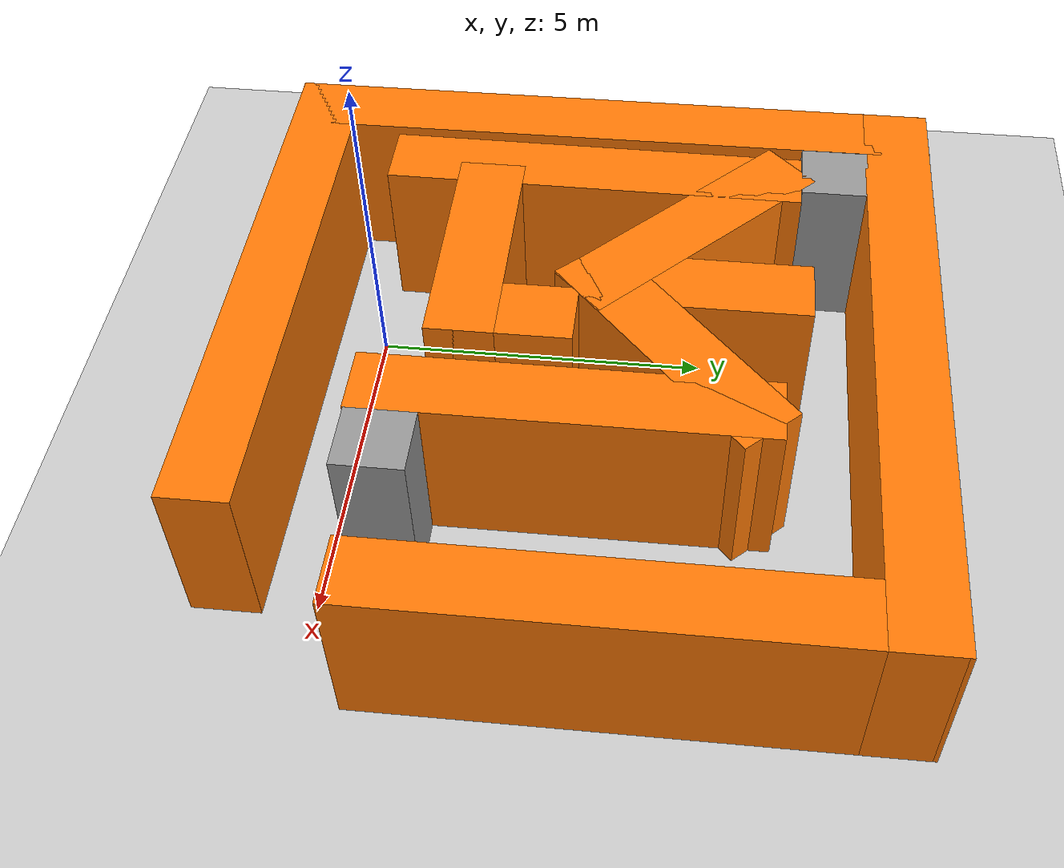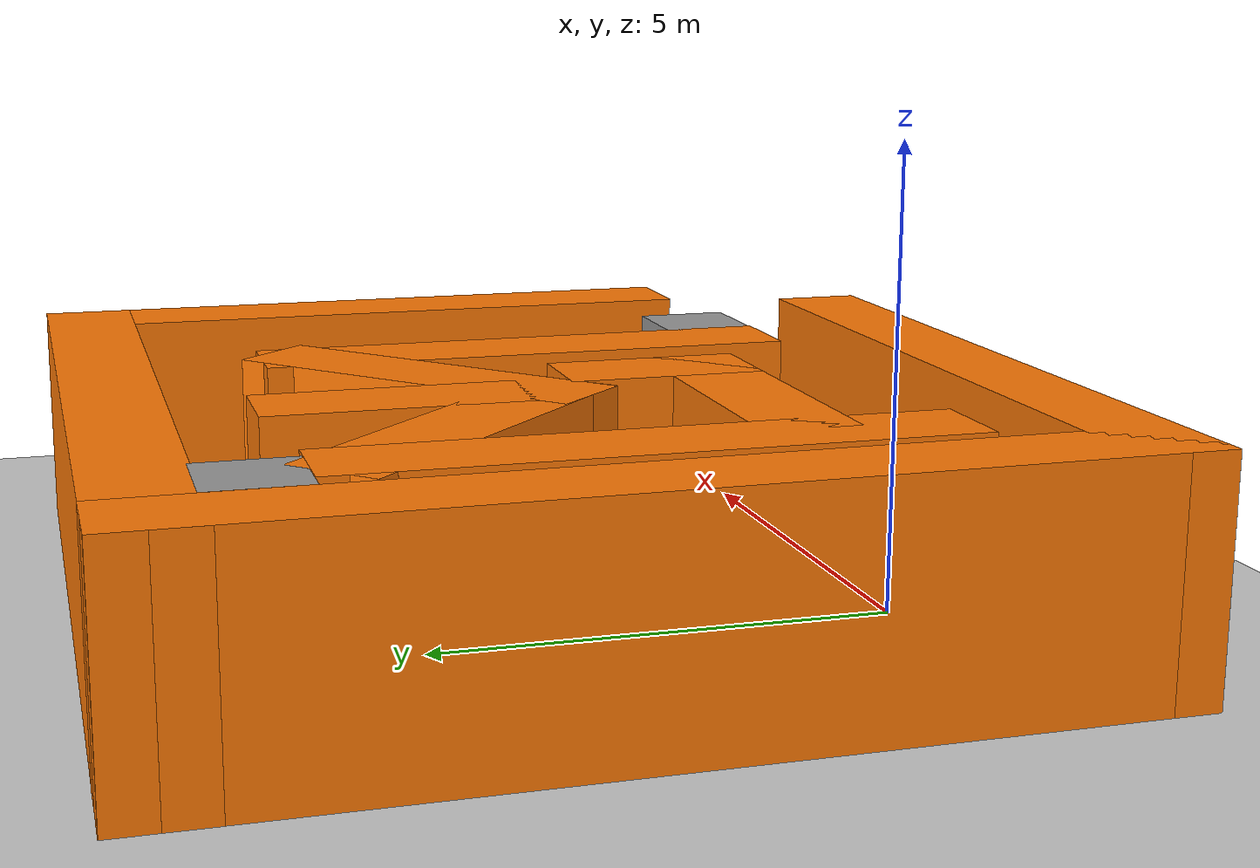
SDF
<sdf version="1.7">
 <world name="default">
  <light name="sun" type="directional">
   <pose>0 0 10 0 -0 0</pose>
   <diffuse>0.8 0.8 0.8 1</diffuse>
   <specular>0.2 0.2 0.2 1</specular>
   <attenuation>
    <range>1000</range>
    <constant>0.9</constant>
    <linear>0.01</linear>
    <quadratic>0.001</quadratic>
   </attenuation>
   <direction>-0.5 0.1 -0.9</direction>
   <spot><inner_angle>0</inner_angle><outer_angle>0</outer_angle><falloff>0</falloff></spot>
  </light>
  <model name="ground_plane">
   <static>1</static>
   <link name="link">
    <collision name="collision">
     <geometry><plane><normal>0 0 1</normal><size>100 100</size></plane></geometry>
     <surface>
      <contact><collide_bitmask>65535</collide_bitmask></contact>
      <friction><ode><mu>100</mu><mu2>50</mu2></ode></friction>
     </surface>
    </collision>
    <visual name="visual">
     <cast_shadows>0</cast_shadows>
     <geometry><plane><normal>0 0 1</normal><size>100 100</size></plane></geometry>
     <material>
      <script><uri>file://media/materials/scripts/gazebo.material</uri><name>Gazebo/Grey</name></script>
     </material>
    </visual>
   </link>
  </model>
  <gravity>0 0 -9.8</gravity>
  <magnetic_field>6e-06 2.3e-05 -4.2e-05</magnetic_field>
  <atmosphere type="adiabatic"/>
  <physics type="ode">
   <max_step_size>0.001</max_step_size>
   <real_time_factor>1</real_time_factor>
   <real_time_update_rate>1000</real_time_update_rate>
  </physics>
  <scene><ambient>0.4 0.4 0.4 1</ambient><background>0.7 0.7 0.7 1</background><shadows>1</shadows></scene>
  <spherical_coordinates>
   <surface_model>EARTH_WGS84</surface_model>
   <latitude_deg>0</latitude_deg>
   <longitude_deg>0</longitude_deg>
   <elevation>0</elevation>
   <heading_deg>0</heading_deg>
  </spherical_coordinates>
  <model name="kayra">
   <pose>1.4947 3.30314 0 0 -0 0</pose>
   <link name="Wall_0">
    <collision name="Wall_0_Collision">
     <geometry><box><size>10.1156 1 2.5</size></box></geometry>
     <pose>0 0 1.25 0 -0 0</pose>
    </collision>
    <visual name="Wall_0_Visual">
     <pose>0 0 1.25 0 -0 0</pose>
     <geometry><box><size>10.1156 1 2.5</size></box></geometry>
     <material>
      <script><uri>file://media/materials/scripts/gazebo.material</uri><name>Gazebo/Grey</name></script>
      <ambient>0.996078 0.47451 0.0196078 1</ambient>
     </material>
     <meta><layer>0</layer></meta>
    </visual>
    <pose>-4.47575 0 0 0 -0 1.57584</pose>
   </link>
   <link name="Wall_1">
    <collision name="Wall_1_Collision">
     <geometry><box><size>10 1 2.5</size></box></geometry>
     <pose>0 0 1.25 0 -0 0</pose>
    </collision>
    <visual name="Wall_1_Visual">
     <pose>0 0 1.25 0 -0 0</pose>
     <geometry><box><size>10 1 2.5</size></box></geometry>
     <material>
      <script><uri>file://media/materials/scripts/gazebo.material</uri><name>Gazebo/Grey</name></script>
      <ambient>0.996078 0.47451 0.0196078 1</ambient>
     </material>
     <meta><layer>0</layer></meta>
    </visual>
    <pose>0.001248 4.558 0 0 -0 0</pose>
   </link>
   <link name="Wall_10">
    <collision name="Wall_10_Collision">
     <geometry><box><size>6.35035 1 2.5</size></box></geometry>
     <pose>0 0 1.25 0 -0 0</pose>
    </collision>
    <visual name="Wall_10_Visual">
     <pose>0 0 1.25 0 -0 0</pose>
     <geometry><box><size>6.35035 1 2.5</size></box></geometry>
     <material>
      <script><uri>file://media/materials/scripts/gazebo.material</uri><name>Gazebo/Grey</name></script>
      <ambient>0.996078 0.47451 0.0196078 1</ambient>
     </material>
     <meta><layer>0</layer></meta>
    </visual>
    <pose>-3.26325 -0.1 0 0 -0 1.56575</pose>
   </link>
   <link name="Wall_11">
    <collision name="Wall_11_Collision">
     <geometry><box><size>4.32982 1 2.5</size></box></geometry>
     <pose>0 0 1.25 0 -0 0</pose>
    </collision>
    <visual name="Wall_11_Visual">
     <pose>0 0 1.25 0 -0 0</pose>
     <geometry><box><size>4.32982 1 2.5</size></box></geometry>
     <material>
      <script><uri>file://media/materials/scripts/gazebo.material</uri><name>Gazebo/Grey</name></script>
      <ambient>0.996078 0.47451 0.0196078 1</ambient>
     </material>
     <meta><layer>0</layer></meta>
    </visual>
    <pose>-2.06575 1.4045 0 0 -0 -0.779664</pose>
   </link>
   <link name="Wall_12">
    <collision name="Wall_12_Collision">
     <geometry><box><size>4.15926 1 2.5</size></box></geometry>
     <pose>0 0 1.25 0 -0 0</pose>
    </collision>
    <visual name="Wall_12_Visual">
     <pose>0 0 1.25 0 -0 0</pose>
     <geometry><box><size>4.15926 1 2.5</size></box></geometry>
     <material>
      <script><uri>file://media/materials/scripts/gazebo.material</uri><name>Gazebo/Grey</name></script>
      <ambient>0.996078 0.47451 0.0196078 1</ambient>
     </material>
     <meta><layer>0</layer></meta>
    </visual>
    <pose>0.280748 1.3035 0 0 -0 0.743756</pose>
   </link>
   <link name="Wall_13">
    <collision name="Wall_13_Collision">
     <geometry><box><size>5.877 1 2.5</size></box></geometry>
     <pose>0 0 1.25 0 -0 0</pose>
    </collision>
    <visual name="Wall_13_Visual">
     <pose>0 0 1.25 0 -0 0</pose>
     <geometry><box><size>5.877 1 2.5</size></box></geometry>
     <material>
      <script><uri>file://media/materials/scripts/gazebo.material</uri><name>Gazebo/Grey</name></script>
      <ambient>0.996078 0.47451 0.0196078 1</ambient>
     </material>
     <meta><layer>0</layer></meta>
    </visual>
    <pose>1.44325 -0.0655 0 0 -0 -1.5708</pose>
   </link>
   <link name="Wall_15">
    <collision name="Wall_15_Collision">
     <geometry><box><size>3.1 1 2.5</size></box></geometry>
     <pose>0 0 1.25 0 -0 0</pose>
    </collision>
    <visual name="Wall_15_Visual">
     <pose>0 0 1.25 0 -0 0</pose>
     <geometry><box><size>3.1 1 2.5</size></box></geometry>
     <material>
      <script><uri>file://media/materials/scripts/gazebo.material</uri><name>Gazebo/Grey</name></script>
      <ambient>0.996078 0.47451 0.0196078 1</ambient>
     </material>
     <meta><layer>0</layer></meta>
    </visual>
    <pose>-0.856152 1.7064 0 0 -0 1.5708</pose>
   </link>
   <link name="Wall_17">
    <collision name="Wall_17_Collision">
     <geometry><box><size>3.6 1 2.5</size></box></geometry>
     <pose>0 0 1.25 0 -0 0</pose>
    </collision>
    <visual name="Wall_17_Visual">
     <pose>0 0 1.25 0 -0 0</pose>
     <geometry><box><size>3.6 1 2.5</size></box></geometry>
     <material>
      <script><uri>file://media/materials/scripts/gazebo.material</uri><name>Gazebo/Grey</name></script>
      <ambient>0.996078 0.47451 0.0196078 1</ambient>
     </material>
     <meta><layer>0</layer></meta>
    </visual>
    <pose>-1.39175 -1.684 0 0 -0 0</pose>
   </link>
   <link name="Wall_18">
    <collision name="Wall_18_Collision">
     <geometry><box><size>2.09996 1 2.5</size></box></geometry>
     <pose>0 0 1.25 0 -0 0</pose>
    </collision>
    <visual name="Wall_18_Visual">
     <pose>0 0 1.25 0 -0 0</pose>
     <geometry><box><size>2.09996 1 2.5</size></box></geometry>
     <material>
      <script><uri>file://media/materials/scripts/gazebo.material</uri><name>Gazebo/Grey</name></script>
      <ambient>0.996078 0.47451 0.0196078 1</ambient>
     </material>
     <meta><layer>0</layer></meta>
    </visual>
    <pose>-0.091752 -1.134 0 0 -0 1.5708</pose>
   </link>
   <link name="Wall_2">
    <collision name="Wall_2_Collision">
     <geometry><box><size>7.75 1 2.5</size></box></geometry>
     <pose>0 0 1.25 0 -0 0</pose>
    </collision>
    <visual name="Wall_2_Visual">
     <pose>0 0 1.25 0 -0 0</pose>
     <geometry><box><size>7.75 1 2.5</size></box></geometry>
     <material>
      <script><uri>file://media/materials/scripts/gazebo.material</uri><name>Gazebo/Grey</name></script>
      <ambient>0.996078 0.47451 0.0196078 1</ambient>
     </material>
     <meta><layer>0</layer></meta>
    </visual>
    <pose>4.50112 1.18276 0 0 -0 -1.57083</pose>
   </link>
   <link name="Wall_4">
    <collision name="Wall_4_Collision">
     <geometry><box><size>8.6 1 2.5</size></box></geometry>
     <pose>0 0 1.25 0 -0 0</pose>
    </collision>
    <visual name="Wall_4_Visual">
     <pose>0 0 1.25 0 -0 0</pose>
     <geometry><box><size>8.6 1 2.5</size></box></geometry>
     <material>
      <script><uri>file://media/materials/scripts/gazebo.material</uri><name>Gazebo/Grey</name></script>
      <ambient>0.996078 0.47451 0.0196078 1</ambient>
     </material>
     <meta><layer>0</layer></meta>
    </visual>
    <pose>-0.652752 -4.558 0 0 -0 0</pose>
   </link>
   <link name="Wall_6">
    <collision name="Wall_6_Collision">
     <geometry><box><size>1.01 1 2.5</size></box></geometry>
     <pose>0 0 1.25 0 -0 0</pose>
    </collision>
    <visual name="Wall_6_Visual">
     <pose>0 0 1.25 0 -0 0</pose>
     <geometry><box><size>1.01 1 2.5</size></box></geometry>
     <material>
      <script><uri>file://media/materials/scripts/gazebo.material</uri><name>Gazebo/Grey</name></script>
      <ambient>1 1 1 1</ambient>
     </material>
     <meta><layer>0</layer></meta>
    </visual>
    <pose>-3.48998 3.58779 0 0 -0 1.5708</pose>
   </link>
   <link name="Wall_8">
    <collision name="Wall_8_Collision">
     <geometry><box><size>1.01 1 2.5</size></box></geometry>
     <pose>0 0 1.25 0 -0 0</pose>
    </collision>
    <visual name="Wall_8_Visual">
     <pose>0 0 1.25 0 -0 0</pose>
     <geometry><box><size>1.01 1 2.5</size></box></geometry>
     <material>
      <script><uri>file://media/materials/scripts/gazebo.material</uri><name>Gazebo/Grey</name></script>
      <ambient>0 0 0 1</ambient>
     </material>
     <meta><layer>0</layer></meta>
    </visual>
    <pose>2.41526 -2.47705 0 0 -0 1.5708</pose>
   </link>
   <static>1</static>
  </model>
 </world>
</sdf>
